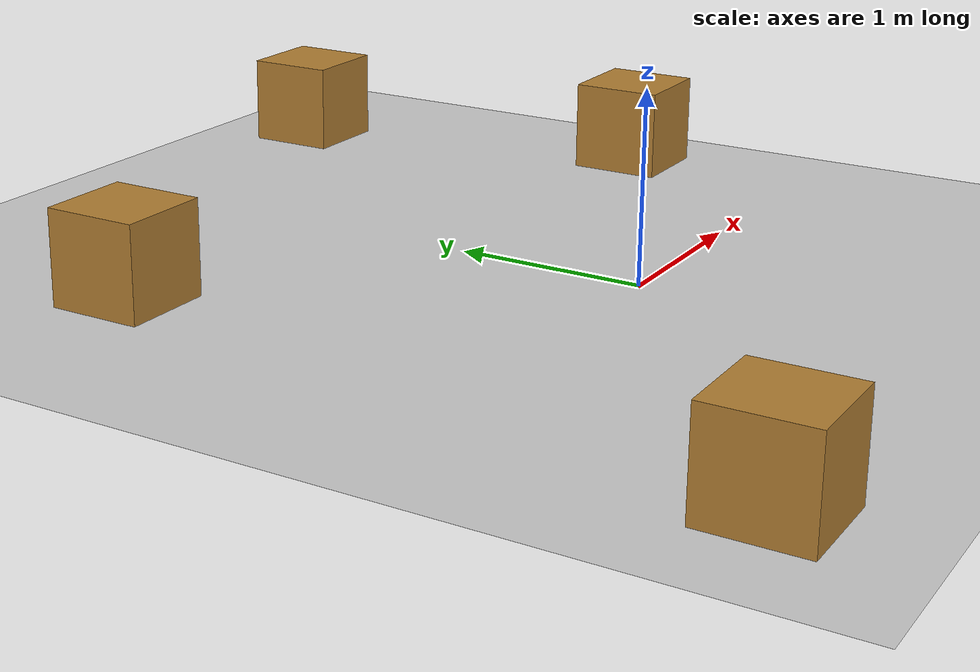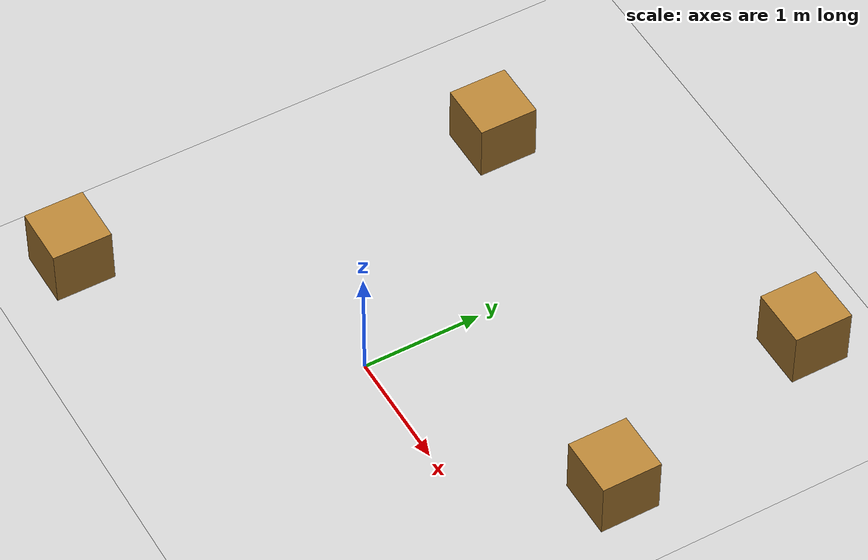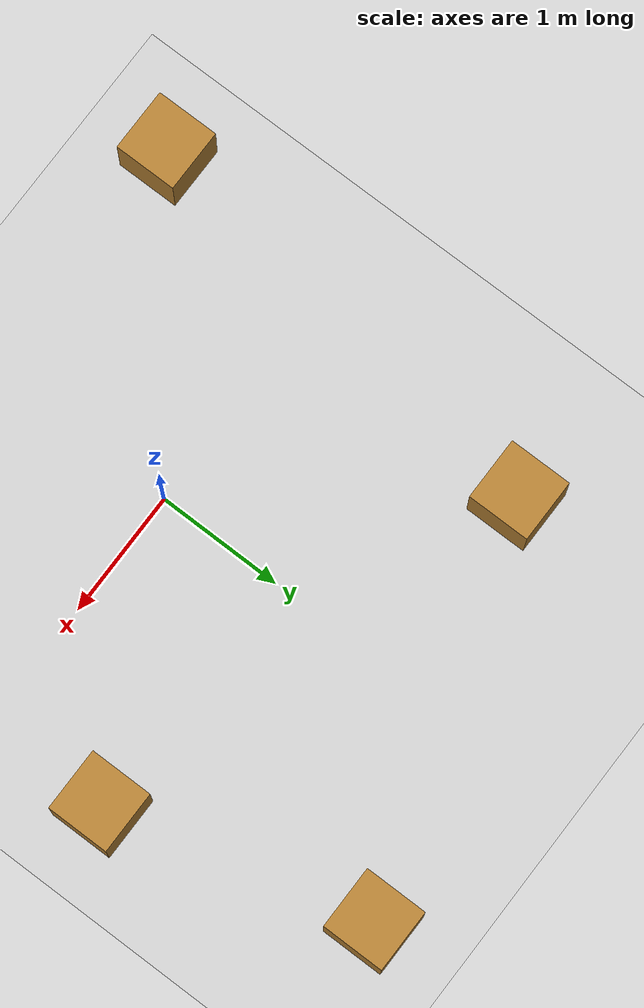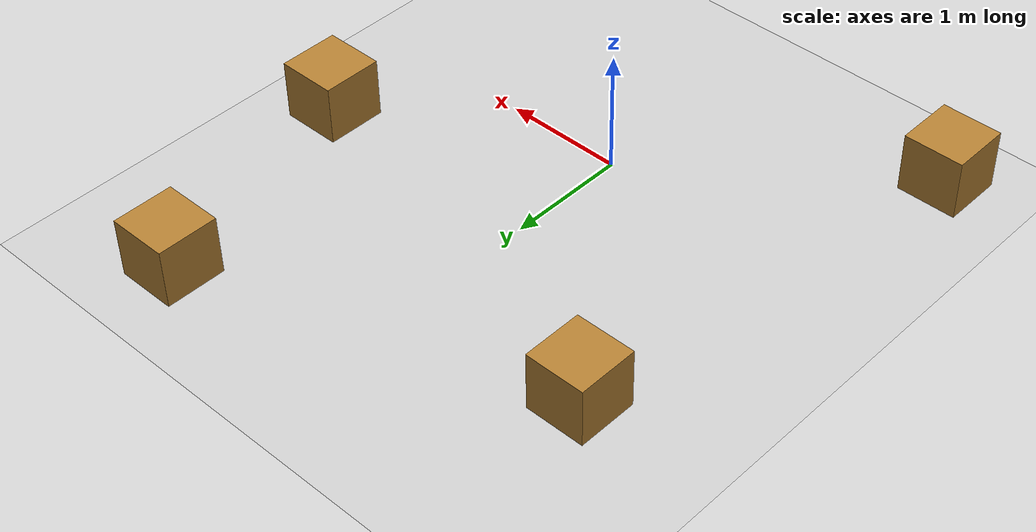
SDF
<?xml version="1.0" ?>
<sdf version="1.8">
  <world name="obstacles">
    <plugin filename="gz-sim-physics-system" name="gz::sim::systems::Physics"></plugin>
    <plugin filename="gz-sim-user-commands-system" name="gz::sim::systems::UserCommands"></plugin>
    <plugin filename="gz-sim-scene-broadcaster-system" name="gz::sim::systems::SceneBroadcaster"></plugin>
    <plugin filename="gz-sim-sensors-system"
        name="gz::sim::systems::Sensors">
    <render_engine>ogre2</render_engine>
    </plugin>

    <plugin filename="gz-sim-gpu-lidar-sensor-system"
            name="gz::sim::systems::GpuLidar">
    </plugin>

    <light type="directional" name="sun">
      <cast_shadows>true</cast_shadows>
      <pose>0 0 10 0 0 0</pose>
      <diffuse>0.8 0.8 0.8 1</diffuse>
      <specular>0.2 0.2 0.2 1</specular>
      <attenuation>
        <range>1000</range>
        <constant>0.9</constant>
        <linear>0.01</linear>
        <quadratic>0.001</quadratic>
      </attenuation>
      <direction>-0.5 0.1 -0.9</direction>
    </light>

    <model name="ground_plane">
      <static>true</static>
      <link name="link">
        <collision name="collision">
          <geometry>
            <plane>
              <normal>0 0 1</normal>
              <size>100 100</size>
            </plane>
          </geometry>
        </collision>
        <visual name="visual">
          <geometry>
            <plane>
              <normal>0 0 1</normal>
              <size>100 100</size>
            </plane>
          </geometry>
          <material>
            <ambient>0.8 0.8 0.8 1</ambient>
            <diffuse>0.8 0.8 0.8 1</diffuse>
            <specular>0.8 0.8 0.8 1</specular>
          </material>
        </visual>
      </link>
    </model>

    <model name="box_1">
      <static>true</static>
      <pose>2.0 1.0 0.25 0 0 0</pose>
      <link name="link">
        <collision name="collision">
          <geometry>
            <box><size>0.5 0.5 0.5</size></box>
          </geometry>
        </collision>
        <visual name="visual">
          <geometry>
            <box><size>0.5 0.5 0.5</size></box>
          </geometry>
          <material>
            <ambient>0.7 0.5 0.2 1</ambient>
            <diffuse>0.7 0.5 0.2 1</diffuse>
          </material>
        </visual>
      </link>
    </model>

    <model name="box_2">
      <static>true</static>
      <pose>-1.5 2.0 0.25 0 0 0</pose>
      <link name="link">
        <collision name="collision">
          <geometry>
            <box><size>0.5 0.5 0.5</size></box>
          </geometry>
        </collision>
        <visual name="visual">
          <geometry>
            <box><size>0.5 0.5 0.5</size></box>
          </geometry>
          <material>
            <ambient>0.7 0.5 0.2 1</ambient>
            <diffuse>0.7 0.5 0.2 1</diffuse>
          </material>
        </visual>
      </link>
    </model>

    <model name="box_3">
      <static>true</static>
      <pose>-2.0 -1.5 0.25 0 0 0</pose>
      <link name="link">
        <collision name="collision">
          <geometry>
            <box><size>0.5 0.5 0.5</size></box>
          </geometry>
        </collision>
        <visual name="visual">
          <geometry>
            <box><size>0.5 0.5 0.5</size></box>
          </geometry>
          <material>
            <ambient>0.7 0.5 0.2 1</ambient>
            <diffuse>0.7 0.5 0.2 1</diffuse>
          </material>
        </visual>
      </link>
    </model>

    <model name="box_4">
      <static>true</static>
      <pose>1.5 3 0.25 0 0 0</pose>
      <link name="link">
        <collision name="collision">
          <geometry>
            <box><size>0.5 0.5 0.5</size></box>
          </geometry>
        </collision>
        <visual name="visual">
          <geometry>
            <box><size>0.5 0.5 0.5</size></box>
          </geometry>
          <material>
            <ambient>0.7 0.5 0.2 1</ambient>
            <diffuse>0.7 0.5 0.2 1</diffuse>
          </material>
        </visual>
      </link>
    </model>

  </world>
</sdf>
